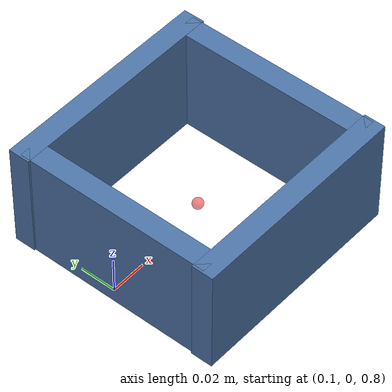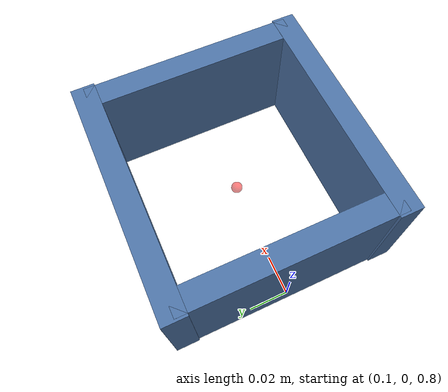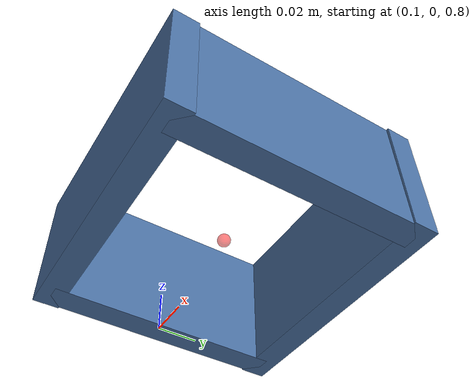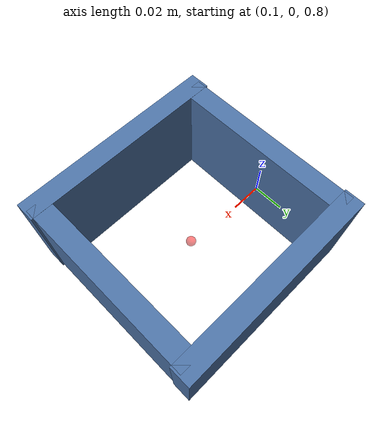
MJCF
<mujoco>
  <worldbody>
    <body name="bowl" pos="0.16 0 0.8">
      <geom name="bowl_wall_N" type="box" size="0.062 0.006 0.03" pos="0 0.055 0.024" euler="-0.3490659 0 0" rgba="0.30 0.45 0.65 1" friction="1.0 0.005 0.0001" group="0" contype="1" conaffinity="1"/>
      <geom name="bowl_wall_S" type="box" size="0.062 0.006 0.03" pos="0 -0.055 0.024" euler="0.3490659 0 0" rgba="0.30 0.45 0.65 1" friction="1.0 0.005 0.0001" group="0" contype="1" conaffinity="1"/>
      <geom name="bowl_wall_E" type="box" size="0.006 0.055 0.03" pos="0.055 0 0.024" euler="0 -0.3490659 0" rgba="0.30 0.45 0.65 1" friction="1.0 0.005 0.0001" group="0" contype="1" conaffinity="1"/>
      <geom name="bowl_wall_W" type="box" size="0.006 0.055 0.03" pos="-0.055 0 0.024" euler="0 0.3490659 0" rgba="0.30 0.45 0.65 1" friction="1.0 0.005 0.0001" group="0" contype="1" conaffinity="1"/>
      <geom name="bowl_wall_N_vis" type="box" size="0.062 0.006 0.03" pos="0 0.055 0.024" euler="-0.3490659 0 0" rgba="0.35 0.55 0.85 1" group="1" contype="0" conaffinity="0"/>
      <geom name="bowl_wall_S_vis" type="box" size="0.062 0.006 0.03" pos="0 -0.055 0.024" euler="0.3490659 0 0" rgba="0.35 0.55 0.85 1" group="1" contype="0" conaffinity="0"/>
      <geom name="bowl_wall_E_vis" type="box" size="0.006 0.055 0.03" pos="0.055 0 0.024" euler="0 -0.3490659 0" rgba="0.35 0.55 0.85 1" group="1" contype="0" conaffinity="0"/>
      <geom name="bowl_wall_W_vis" type="box" size="0.006 0.055 0.03" pos="-0.055 0 0.024" euler="0 0.3490659 0" rgba="0.35 0.55 0.85 1" group="1" contype="0" conaffinity="0"/>
      <site name="bowl_site" pos="0 0 0.01" size="0.003" rgba="1 0 0 0.5"/>
    </body>
  </worldbody>
</mujoco>
